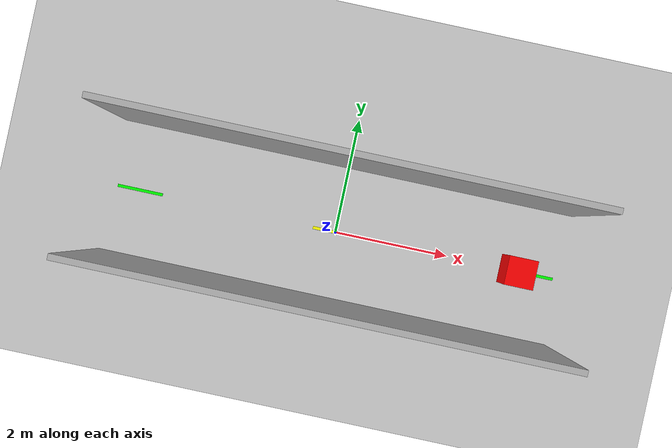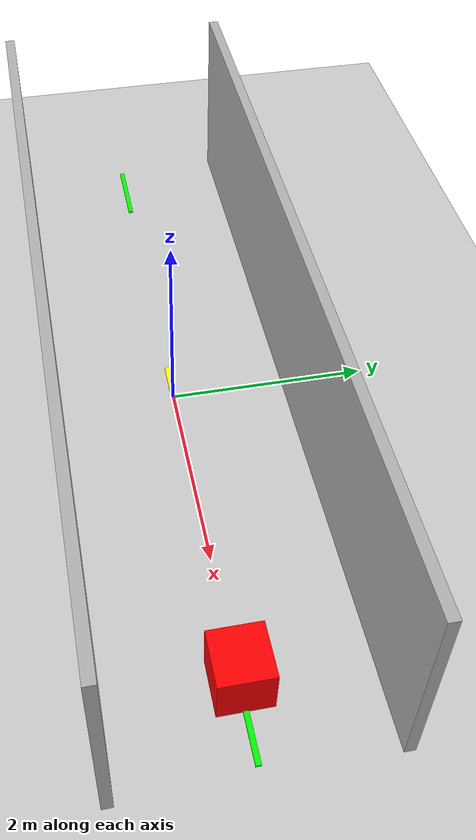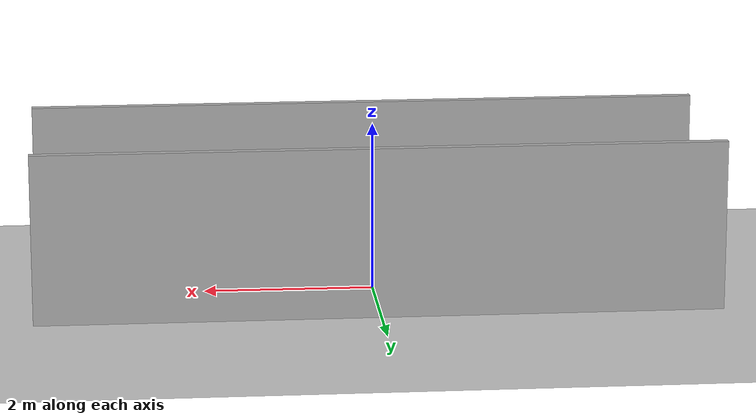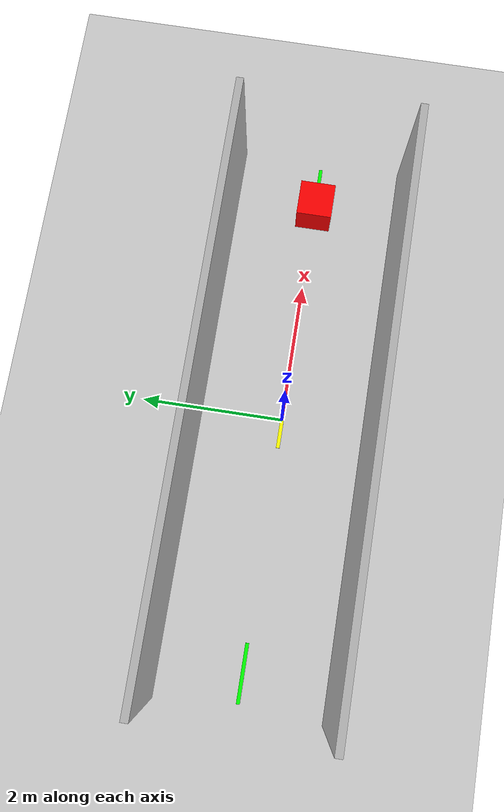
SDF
<?xml version="1.0" ?>
<sdf version="1.6">
  <world name="exit_corridor">

    <include>
      <uri>model://ground_plane</uri>
    </include>

    <include>
      <uri>model://sun</uri>
    </include>

    <model name="left_wall">
      <static>true</static>
      <pose>0 1.2 1.0 0 0 0</pose>
      <link name="link">
        <collision name="collision">
          <geometry>
            <box>
              <size>8.0 0.1 2.0</size>
            </box>
          </geometry>
        </collision>
        <visual name="visual">
          <geometry>
            <box>
              <size>8.0 0.1 2.0</size>
            </box>
          </geometry>
          <material>
            <ambient>0.7 0.7 0.7 1</ambient>
            <diffuse>0.7 0.7 0.7 1</diffuse>
          </material>
        </visual>
      </link>
    </model>

    <model name="right_wall">
      <static>true</static>
      <pose>0 -1.2 1.0 0 0 0</pose>
      <link name="link">
        <collision name="collision">
          <geometry>
            <box>
              <size>8.0 0.1 2.0</size>
            </box>
          </geometry>
        </collision>
        <visual name="visual">
          <geometry>
            <box>
              <size>8.0 0.1 2.0</size>
            </box>
          </geometry>
          <material>
            <ambient>0.7 0.7 0.7 1</ambient>
            <diffuse>0.7 0.7 0.7 1</diffuse>
          </material>
        </visual>
      </link>
    </model>

    <model name="exit_1_marker">
      <static>true</static>
      <pose>-3.5 0 0.01 0 0 0</pose>
      <link name="link">
        <visual name="visual">
          <geometry>
            <box>
              <size>0.8 0.05 0.02</size>
            </box>
          </geometry>
          <material>
            <ambient>0 1 0 1</ambient>
            <diffuse>0 1 0 1</diffuse>
          </material>
        </visual>
      </link>
    </model>

    <model name="center_zone_marker">
      <static>true</static>
      <pose>0 0 0.01 0 0 0</pose>
      <link name="link">
        <visual name="visual">
          <geometry>
            <box>
              <size>0.8 0.05 0.02</size>
            </box>
          </geometry>
          <material>
            <ambient>1 1 0 1</ambient>
            <diffuse>1 1 0 1</diffuse>
          </material>
        </visual>
      </link>
    </model>

    <model name="exit_2_marker">
      <static>true</static>
      <pose>3.5 0 0.01 0 0 0</pose>
      <link name="link">
        <visual name="visual">
          <geometry>
            <box>
              <size>0.8 0.05 0.02</size>
            </box>
          </geometry>
          <material>
            <ambient>0 1 0 1</ambient>
            <diffuse>0 1 0 1</diffuse>
          </material>
        </visual>
      </link>
    </model>

    <model name="test_box_obstacle">
      <static>true</static>
      <pose>3.2 0 0.25 0 0 0</pose>
      <link name="link">
        <collision name="collision">
          <geometry>
            <box>
              <size>0.5 0.5 0.5</size>
            </box>
          </geometry>
        </collision>
        <visual name="visual">
          <geometry>
            <box>
              <size>0.5 0.5 0.5</size>
            </box>
          </geometry>
          <material>
            <ambient>1 0 0 1</ambient>
            <diffuse>1 0 0 1</diffuse>
          </material>
        </visual>
      </link>
    </model>

  </world>
</sdf>
